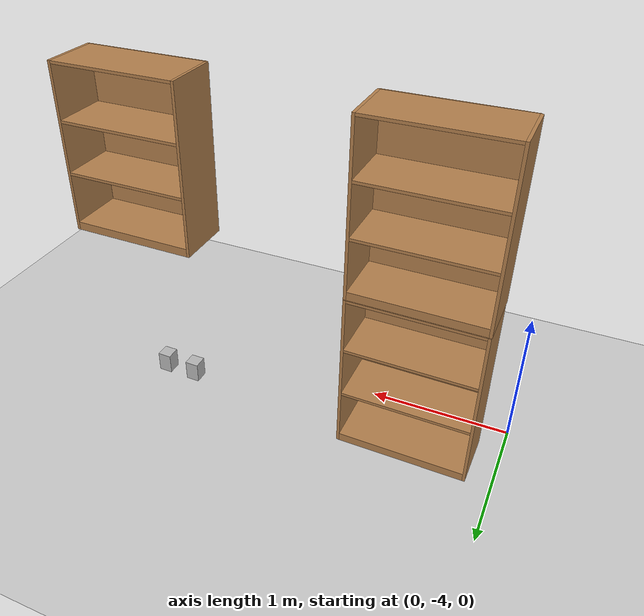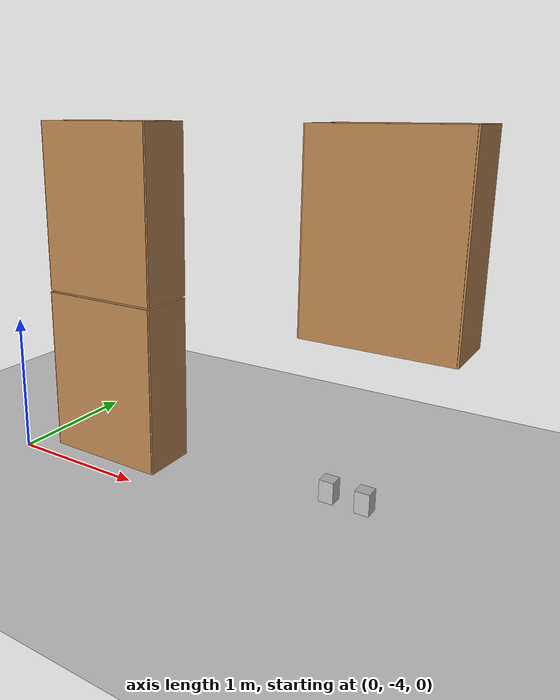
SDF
<sdf version="1.7">
 <world name="default">
  <model name="ground_plane">
   <static>1</static>
   <link name="link">
    <collision name="collision">
     <geometry><plane><normal>0 0 1</normal><size>100 100</size></plane></geometry>
     <surface><friction><ode><mu>100</mu><mu2>50</mu2></ode></friction></surface>
    </collision>
    <visual name="visual">
     <cast_shadows>0</cast_shadows>
     <geometry><plane><normal>0 0 1</normal><size>100 100</size></plane></geometry>
     <material>
      <script><uri>file://media/materials/scripts/gazebo.material</uri><name>Gazebo/Grey</name></script>
     </material>
    </visual>
   </link>
  </model>
  <model name="bookshelf_5_clone_0">
   <static>1</static>
   <link name="link">
    <inertial><mass>1</mass></inertial>
    <collision name="back">
     <pose>0 0.005 0.6 0 -0 0</pose>
     <geometry><box><size>0.9 0.01 1.2</size></box></geometry>
    </collision>
    <visual name="visual1">
     <pose>0 0.005 0.6 0 -0 0</pose>
     <geometry><box><size>0.9 0.01 1.2</size></box></geometry>
     <material>
      <script><uri>file://media/materials/scripts/gazebo.material</uri><name>Gazebo/Wood</name></script>
     </material>
    </visual>
    <collision name="left_side">
     <pose>0.45 -0.195 0.6 0 -0 0</pose>
     <geometry><box><size>0.02 0.4 1.2</size></box></geometry>
    </collision>
    <visual name="visual2">
     <pose>0.45 -0.195 0.6 0 -0 0</pose>
     <geometry><box><size>0.02 0.4 1.2</size></box></geometry>
     <material>
      <script><uri>file://media/materials/scripts/gazebo.material</uri><name>Gazebo/Wood</name></script>
     </material>
    </visual>
    <collision name="right_side">
     <pose>-0.45 -0.195 0.6 0 -0 0</pose>
     <geometry><box><size>0.02 0.4 1.2</size></box></geometry>
    </collision>
    <visual name="visual3">
     <pose>-0.45 -0.195 0.6 0 -0 0</pose>
     <geometry><box><size>0.02 0.4 1.2</size></box></geometry>
     <material>
      <script><uri>file://media/materials/scripts/gazebo.material</uri><name>Gazebo/Wood</name></script>
     </material>
    </visual>
    <collision name="bottom">
     <pose>0 -0.195 0.03 0 -0 0</pose>
     <geometry><box><size>0.88 0.4 0.06</size></box></geometry>
    </collision>
    <visual name="visual4">
     <pose>0 -0.195 0.03 0 -0 0</pose>
     <geometry><box><size>0.88 0.4 0.06</size></box></geometry>
     <material>
      <script><uri>file://media/materials/scripts/gazebo.material</uri><name>Gazebo/Wood</name></script>
     </material>
    </visual>
    <collision name="top">
     <pose>0 -0.195 1.19 0 -0 0</pose>
     <geometry><box><size>0.88 0.4 0.02</size></box></geometry>
    </collision>
    <visual name="visual5">
     <pose>0 -0.195 1.19 0 -0 0</pose>
     <geometry><box><size>0.88 0.4 0.02</size></box></geometry>
     <material>
      <script><uri>file://media/materials/scripts/gazebo.material</uri><name>Gazebo/Wood</name></script>
     </material>
    </visual>
    <collision name="low_shelf">
     <pose>0 -0.195 0.43 0 -0 0</pose>
     <geometry><box><size>0.88 0.4 0.02</size></box></geometry>
    </collision>
    <visual name="visual6">
     <pose>0 -0.195 0.43 0 -0 0</pose>
     <geometry><box><size>0.88 0.4 0.02</size></box></geometry>
     <material>
      <script><uri>file://media/materials/scripts/gazebo.material</uri><name>Gazebo/Wood</name></script>
     </material>
    </visual>
    <collision name="high_shelf">
     <pose>0 -0.195 0.8 0 -0 0</pose>
     <geometry><box><size>0.88 0.4 0.02</size></box></geometry>
    </collision>
    <visual name="visual7">
     <pose>0 -0.195 0.8 0 -0 0</pose>
     <geometry><box><size>0.88 0.4 0.02</size></box></geometry>
     <material>
      <script><uri>file://media/materials/scripts/gazebo.material</uri><name>Gazebo/Wood</name></script>
     </material>
    </visual>
   </link>
   <pose>0.624398 -3.83719 0 0 -0 3.12955</pose>
  </model>
  <model name="bookshelf_5_clone">
   <static>1</static>
   <link name="link">
    <inertial><mass>1</mass></inertial>
    <collision name="back">
     <pose>0 0.005 0.6 0 -0 0</pose>
     <geometry><box><size>0.9 0.01 1.2</size></box></geometry>
    </collision>
    <visual name="visual1">
     <pose>0 0.005 0.6 0 -0 0</pose>
     <geometry><box><size>0.9 0.01 1.2</size></box></geometry>
     <material>
      <script><uri>file://media/materials/scripts/gazebo.material</uri><name>Gazebo/Wood</name></script>
     </material>
    </visual>
    <collision name="left_side">
     <pose>0.45 -0.195 0.6 0 -0 0</pose>
     <geometry><box><size>0.02 0.4 1.2</size></box></geometry>
    </collision>
    <visual name="visual2">
     <pose>0.45 -0.195 0.6 0 -0 0</pose>
     <geometry><box><size>0.02 0.4 1.2</size></box></geometry>
     <material>
      <script><uri>file://media/materials/scripts/gazebo.material</uri><name>Gazebo/Wood</name></script>
     </material>
    </visual>
    <collision name="right_side">
     <pose>-0.45 -0.195 0.6 0 -0 0</pose>
     <geometry><box><size>0.02 0.4 1.2</size></box></geometry>
    </collision>
    <visual name="visual3">
     <pose>-0.45 -0.195 0.6 0 -0 0</pose>
     <geometry><box><size>0.02 0.4 1.2</size></box></geometry>
     <material>
      <script><uri>file://media/materials/scripts/gazebo.material</uri><name>Gazebo/Wood</name></script>
     </material>
    </visual>
    <collision name="bottom">
     <pose>0 -0.195 0.03 0 -0 0</pose>
     <geometry><box><size>0.88 0.4 0.06</size></box></geometry>
    </collision>
    <visual name="visual4">
     <pose>0 -0.195 0.03 0 -0 0</pose>
     <geometry><box><size>0.88 0.4 0.06</size></box></geometry>
     <material>
      <script><uri>file://media/materials/scripts/gazebo.material</uri><name>Gazebo/Wood</name></script>
     </material>
    </visual>
    <collision name="top">
     <pose>0 -0.195 1.19 0 -0 0</pose>
     <geometry><box><size>0.88 0.4 0.02</size></box></geometry>
    </collision>
    <visual name="visual5">
     <pose>0 -0.195 1.19 0 -0 0</pose>
     <geometry><box><size>0.88 0.4 0.02</size></box></geometry>
     <material>
      <script><uri>file://media/materials/scripts/gazebo.material</uri><name>Gazebo/Wood</name></script>
     </material>
    </visual>
    <collision name="low_shelf">
     <pose>0 -0.195 0.43 0 -0 0</pose>
     <geometry><box><size>0.88 0.4 0.02</size></box></geometry>
    </collision>
    <visual name="visual6">
     <pose>0 -0.195 0.43 0 -0 0</pose>
     <geometry><box><size>0.88 0.4 0.02</size></box></geometry>
     <material>
      <script><uri>file://media/materials/scripts/gazebo.material</uri><name>Gazebo/Wood</name></script>
     </material>
    </visual>
    <collision name="high_shelf">
     <pose>0 -0.195 0.8 0 -0 0</pose>
     <geometry><box><size>0.88 0.4 0.02</size></box></geometry>
    </collision>
    <visual name="visual7">
     <pose>0 -0.195 0.8 0 -0 0</pose>
     <geometry><box><size>0.88 0.4 0.02</size></box></geometry>
     <material>
      <script><uri>file://media/materials/scripts/gazebo.material</uri><name>Gazebo/Wood</name></script>
     </material>
    </visual>
   </link>
   <pose>2.64795 -3.86432 1.21139 0 -0 3.12955</pose>
  </model>
  <model name="bookshelf_5_clone_clone">
   <static>1</static>
   <link name="link">
    <inertial><mass>1</mass></inertial>
    <collision name="back">
     <pose>0 0.005 0.6 0 -0 0</pose>
     <geometry><box><size>0.9 0.01 1.2</size></box></geometry>
    </collision>
    <visual name="visual1">
     <pose>0 0.005 0.6 0 -0 0</pose>
     <geometry><box><size>0.9 0.01 1.2</size></box></geometry>
     <material>
      <script><uri>file://media/materials/scripts/gazebo.material</uri><name>Gazebo/Wood</name></script>
     </material>
    </visual>
    <collision name="left_side">
     <pose>0.45 -0.195 0.6 0 -0 0</pose>
     <geometry><box><size>0.02 0.4 1.2</size></box></geometry>
    </collision>
    <visual name="visual2">
     <pose>0.45 -0.195 0.6 0 -0 0</pose>
     <geometry><box><size>0.02 0.4 1.2</size></box></geometry>
     <material>
      <script><uri>file://media/materials/scripts/gazebo.material</uri><name>Gazebo/Wood</name></script>
     </material>
    </visual>
    <collision name="right_side">
     <pose>-0.45 -0.195 0.6 0 -0 0</pose>
     <geometry><box><size>0.02 0.4 1.2</size></box></geometry>
    </collision>
    <visual name="visual3">
     <pose>-0.45 -0.195 0.6 0 -0 0</pose>
     <geometry><box><size>0.02 0.4 1.2</size></box></geometry>
     <material>
      <script><uri>file://media/materials/scripts/gazebo.material</uri><name>Gazebo/Wood</name></script>
     </material>
    </visual>
    <collision name="bottom">
     <pose>0 -0.195 0.03 0 -0 0</pose>
     <geometry><box><size>0.88 0.4 0.06</size></box></geometry>
    </collision>
    <visual name="visual4">
     <pose>0 -0.195 0.03 0 -0 0</pose>
     <geometry><box><size>0.88 0.4 0.06</size></box></geometry>
     <material>
      <script><uri>file://media/materials/scripts/gazebo.material</uri><name>Gazebo/Wood</name></script>
     </material>
    </visual>
    <collision name="top">
     <pose>0 -0.195 1.19 0 -0 0</pose>
     <geometry><box><size>0.88 0.4 0.02</size></box></geometry>
    </collision>
    <visual name="visual5">
     <pose>0 -0.195 1.19 0 -0 0</pose>
     <geometry><box><size>0.88 0.4 0.02</size></box></geometry>
     <material>
      <script><uri>file://media/materials/scripts/gazebo.material</uri><name>Gazebo/Wood</name></script>
     </material>
    </visual>
    <collision name="low_shelf">
     <pose>0 -0.195 0.43 0 -0 0</pose>
     <geometry><box><size>0.88 0.4 0.02</size></box></geometry>
    </collision>
    <visual name="visual6">
     <pose>0 -0.195 0.43 0 -0 0</pose>
     <geometry><box><size>0.88 0.4 0.02</size></box></geometry>
     <material>
      <script><uri>file://media/materials/scripts/gazebo.material</uri><name>Gazebo/Wood</name></script>
     </material>
    </visual>
    <collision name="high_shelf">
     <pose>0 -0.195 0.8 0 -0 0</pose>
     <geometry><box><size>0.88 0.4 0.02</size></box></geometry>
    </collision>
    <visual name="visual7">
     <pose>0 -0.195 0.8 0 -0 0</pose>
     <geometry><box><size>0.88 0.4 0.02</size></box></geometry>
     <material>
      <script><uri>file://media/materials/scripts/gazebo.material</uri><name>Gazebo/Wood</name></script>
     </material>
    </visual>
   </link>
   <pose>0.620317 -3.82873 1.21139 0 -0 3.12955</pose>
  </model>
  <model name="tea_box_clone_0">
   <link name="link">
    <pose>0 0 0.075 0 -0 0</pose>
    <visual name="visual">
     <geometry><box><size>0.1 0.1 0.15</size></box></geometry>
     <material>
      <script>
       <uri>model://tea_box/materials/scripts</uri>
       <uri>model://tea_box/materials/textures</uri>
       <name>tea_pat</name>
      </script>
     </material>
    </visual>
    <collision name="collision"><geometry><box><size>0.1 0.1 0.15</size></box></geometry></collision>
   </link>
   <static>1</static>
   <pose>2.54063 -3.57186 0.061312 0 -0 1.56458</pose>
  </model>
  <model name="tea_box_clone_1">
   <link name="link">
    <pose>0 0 0.075 0 -0 0</pose>
    <visual name="visual">
     <geometry><box><size>0.1 0.1 0.15</size></box></geometry>
     <material>
      <script>
       <uri>model://tea_box/materials/scripts</uri>
       <uri>model://tea_box/materials/textures</uri>
       <name>tea_pat</name>
      </script>
     </material>
    </visual>
    <collision name="collision"><geometry><box><size>0.1 0.1 0.15</size></box></geometry></collision>
   </link>
   <static>1</static>
   <pose>2.29718 -3.56584 0.061312 0 -0 1.56458</pose>
  </model>
 </world>
</sdf>
